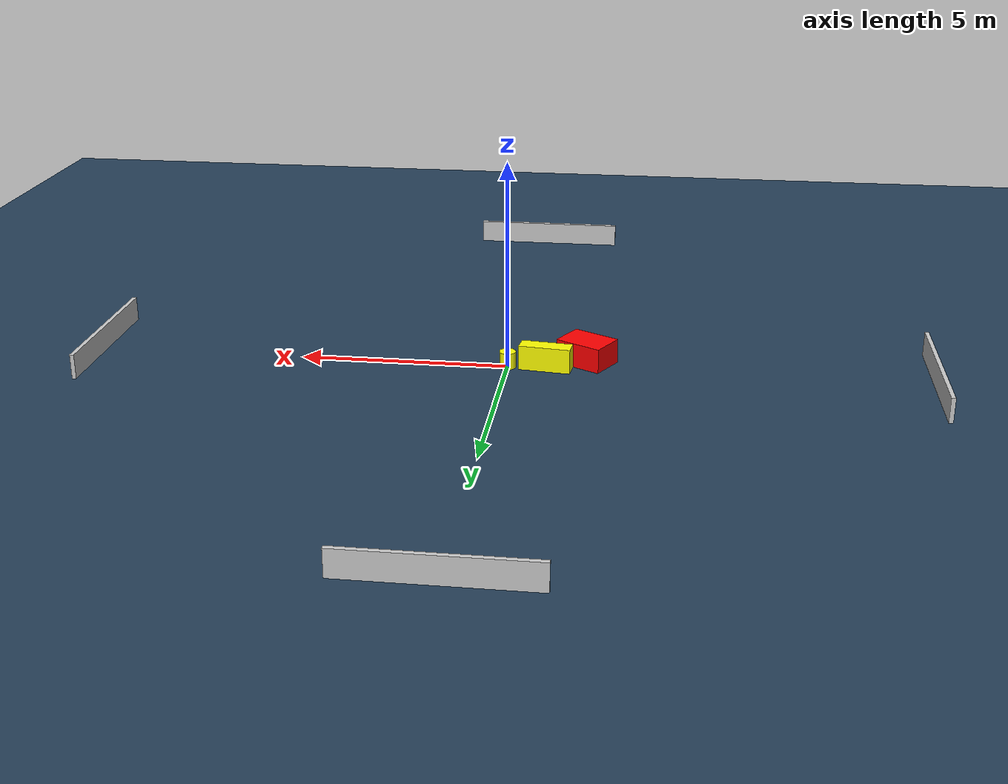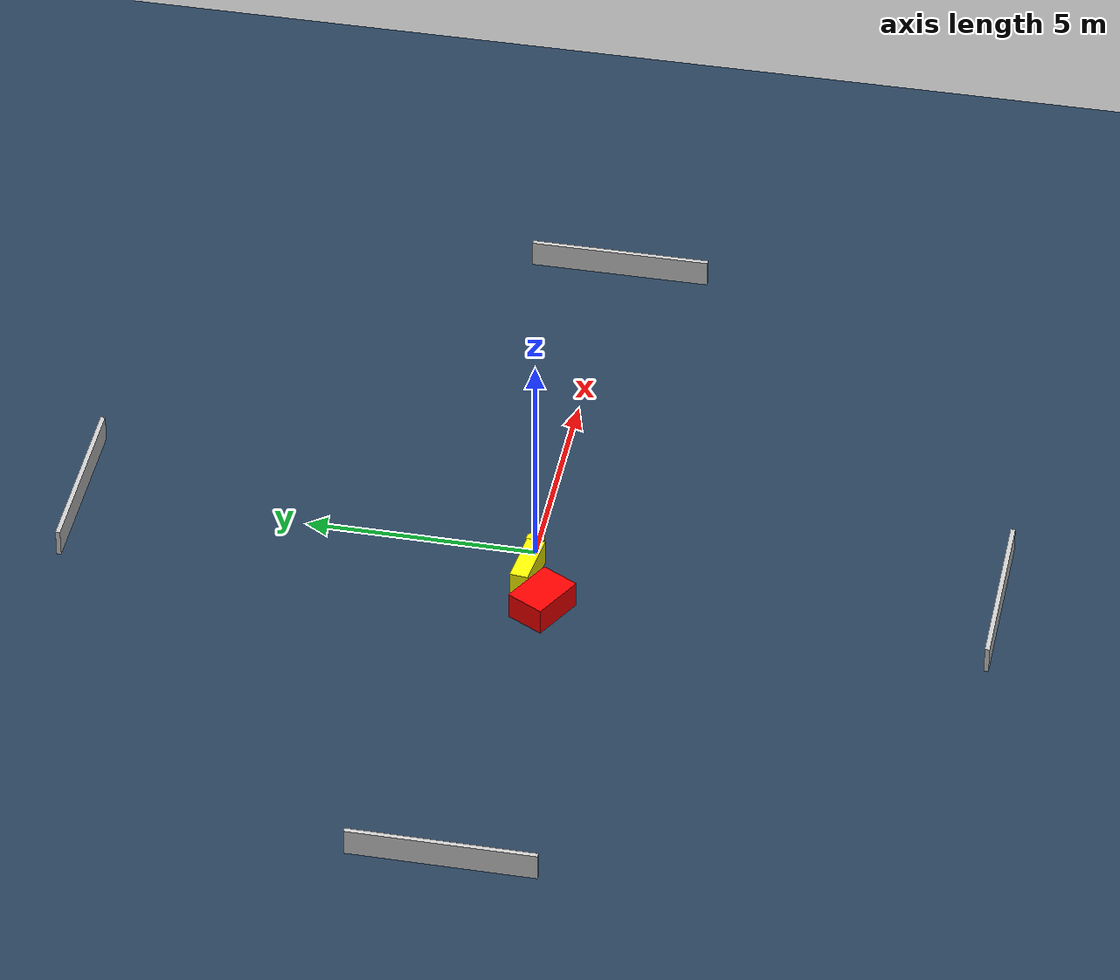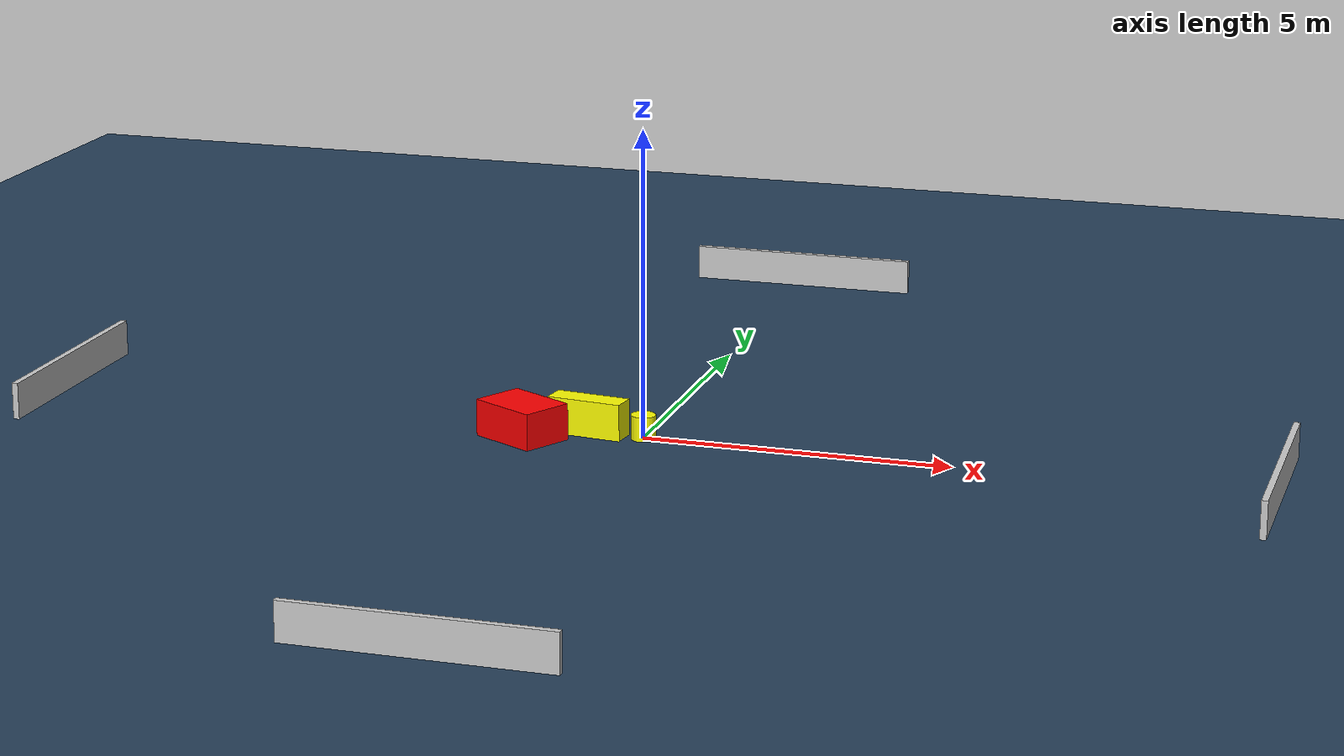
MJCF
<?xml version="1.0" ?>
<mujoco model="generated_environment">
  <option timestep="0.01" integrator="RK4" cone="elliptic"/>
  <default>
    <geom density="1"/>
  </default>
  <asset>
    <texture builtin="gradient" height="3072" name="skybox" rgb1="0.3 0.5 0.7" rgb2="0 0 0" type="skybox" width="512"/>
    <texture builtin="checker" height="300" name="groundplane" rgb1="0.2 0.3 0.4" rgb2="0.1 0.2 0.3" type="2d" width="300"/>
    <material name="groundplane" reflectance="0.2" texrepeat="5 5" texture="groundplane"/>
  </asset>
  <worldbody>
    <light dir="0 0 -1" directional="true" pos="0 0 1.5"/>
    <geom condim="3" friction="0.5 0.005 0.001" material="groundplane" name="floor" pos="0 0 0" size="0 0 0.05" type="plane"/>
    <body name="walls">
      <geom name="wall_1" condim="4" pos="-10.0 0.0 0.3" rgba="0.800000011920929 0.800000011920929 0.800000011920929 1.0" size="0.05 2.0 0.3" type="box"/>
      <geom name="wall_2" condim="4" pos="10.0 0.0 0.3" rgba="0.800000011920929 0.800000011920929 0.800000011920929 1.0" size="0.05 2.0 0.3" type="box"/>
      <geom name="wall_3" condim="4" pos="0.0 -10.0 0.3" rgba="0.800000011920929 0.800000011920929 0.800000011920929 1.0" size="2.0 0.05 0.3" type="box"/>
      <geom name="wall_4" condim="4" pos="0.0 10.0 0.3" rgba="0.800000011920929 0.800000011920929 0.800000011920929 1.0" size="2.0 0.05 0.3" type="box"/>
    </body>
    <body name="robot">
      <joint name="joint_x" type="slide" pos="0 0 0" axis="1 0 0"/>
      <joint name="joint_y" type="slide" pos="0 0 0" axis="0 1 0"/>
      <geom name="robot" type="cylinder" pos="0.0 0.0 0.2" size="0.2 0.2 0.0" mass="5.0" friction="1.0 0.005 0.0001" condim="4" rgba="1.0 1.0 0.0 1.0"/>
    </body>
    <body name="obstacle_1_movable">
      <geom name="obstacle_1_movable" condim="4" pos="-0.9122892177851917 -0.003321154741955864 0.3" euler="0 0 353.4090678593146" friction="0.0 0.005 0.001" rgba="1.0 1.0 0.0 1.0" size="0.6189495552241076 0.20089838489008077 0.3" type="box" mass="0.1"/>
      <joint type="free"/>
    </body>
    <body name="obstacle_2_static">
      <geom name="obstacle_2_static" condim="4" pos="-1.8562721056370874 -0.5106678521508433 0.3" euler="0 0 241.35264382356272" friction="0.0 0.005 0.001" rgba="1.0 0.0 0.0 1.0" size="0.4354296818259683 0.5944707707937708 0.3" type="box"/>
    </body>
  </worldbody>
  <actuator>
    <motor name="actuator_x" joint="joint_x" gear="1" ctrlrange="-1 1"/>
    <motor name="actuator_y" joint="joint_y" gear="1" ctrlrange="-1 1"/>
  </actuator>
</mujoco>
